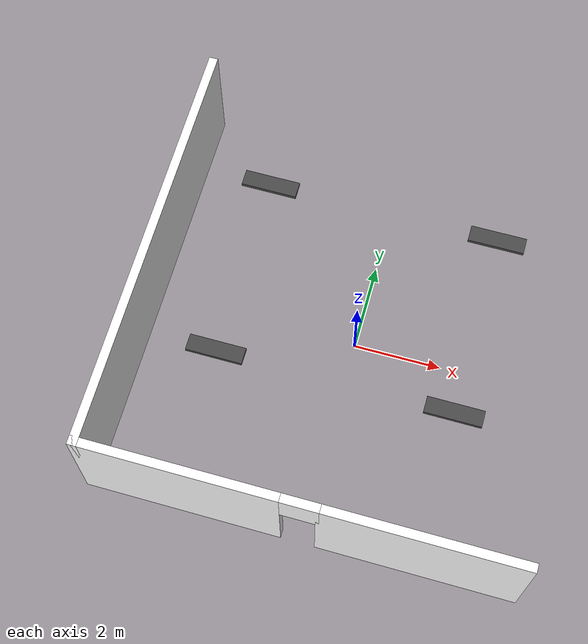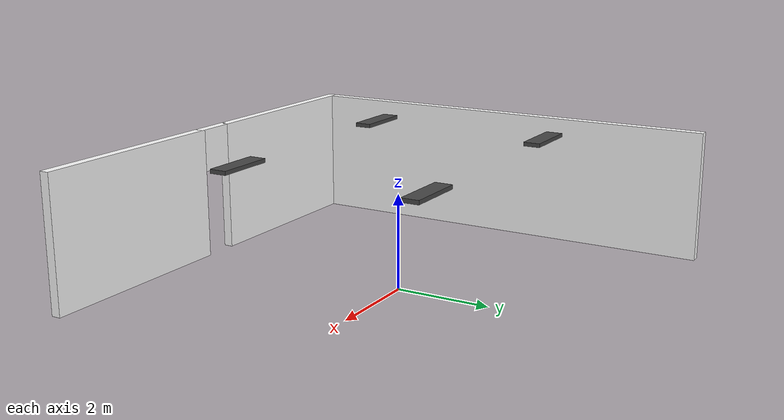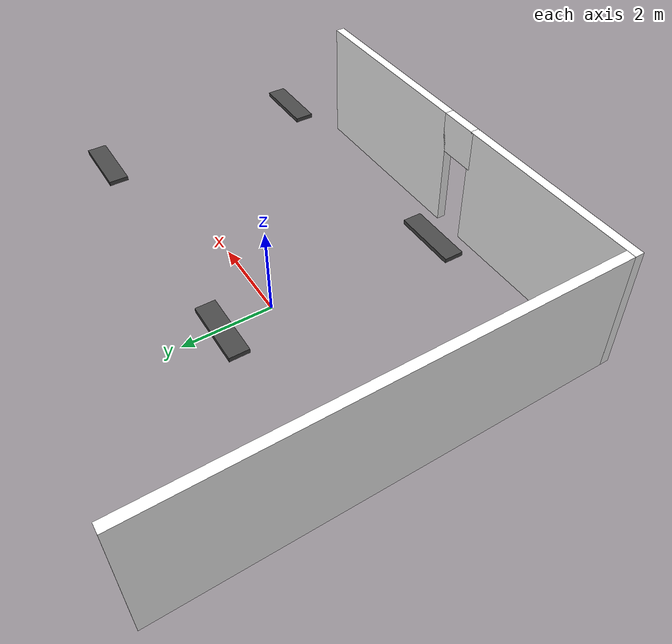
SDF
<sdf version="1.12">
 <world name="small_factory_room">
  <model name="south_wall">
   <static>true</static>
   <link name="south_wall_left_link">
    <pose>-2.5625 -4.6500000000000004 1.5 0 0 0</pose>
    <collision name="south_wall_left_collision">
     <geometry><box><size>4.375 0.20000000000000001 2.7999999999999998</size></box></geometry>
    </collision>
    <visual name="south_wall_left_visual">
     <geometry>
      <mesh>
       <uri>file:///home/nearteh/Documents/Gazebo World/my_world/models/Walls/meshes/south_wall_left.obj</uri>
      </mesh>
     </geometry>
     <material>
      <ambient>1 1 1 1</ambient>
      <diffuse>1 1 1 1</diffuse>
      <specular>0.150000006 0.150000006 0.150000006 1</specular>
      <pbr>
       <metal>
        <albedo_map>file:///home/nearteh/Documents/Gazebo World/my_world/models/Walls/textures/plastered_wall_02_1k/textures/plastered_wall_02_diff_1k.jpg</albedo_map>
        <roughness_map>file:///home/nearteh/Documents/Gazebo World/my_world/models/Walls/textures/plastered_wall_02_1k/textures/plastered_wall_02_rough_1k.exr</roughness_map>
        <metalness>0.0</metalness>
        <ambient_occlusion_map>file:///home/nearteh/Documents/Gazebo World/my_world/models/Walls/textures/plastered_wall_02_1k/textures/plastered_wall_02_ao_1k.jpg</ambient_occlusion_map>
        <normal_map type="tangent">file:///home/nearteh/Documents/Gazebo World/my_world/models/Walls/textures/plastered_wall_02_1k/textures/plastered_wall_02_nor_gl_1k.exr</normal_map>
       </metal>
      </pbr>
     </material>
    </visual>
    <inertial>
     <mass>1</mass>
     <inertia><ixx>1</ixx><ixy>0</ixy><ixz>0</ixz><iyy>1</iyy><iyz>0</iyz><izz>1</izz></inertia>
    </inertial>
   </link>
   <link name="south_wall_right_link">
    <pose>2.5625 -4.6500000000000004 1.5 0 0 0</pose>
    <collision name="south_wall_right_collision">
     <geometry><box><size>4.375 0.20000000000000001 2.7999999999999998</size></box></geometry>
    </collision>
    <visual name="south_wall_right_visual">
     <geometry>
      <mesh>
       <uri>file:///home/nearteh/Documents/Gazebo World/my_world/models/Walls/meshes/south_wall_right.obj</uri>
      </mesh>
     </geometry>
     <material>
      <ambient>1 1 1 1</ambient>
      <diffuse>1 1 1 1</diffuse>
      <specular>0.150000006 0.150000006 0.150000006 1</specular>
      <pbr>
       <metal>
        <albedo_map>file:///home/nearteh/Documents/Gazebo World/my_world/models/Walls/textures/plastered_wall_02_1k/textures/plastered_wall_02_diff_1k.jpg</albedo_map>
        <roughness_map>file:///home/nearteh/Documents/Gazebo World/my_world/models/Walls/textures/plastered_wall_02_1k/textures/plastered_wall_02_rough_1k.exr</roughness_map>
        <metalness>0.0</metalness>
        <ambient_occlusion_map>file:///home/nearteh/Documents/Gazebo World/my_world/models/Walls/textures/plastered_wall_02_1k/textures/plastered_wall_02_ao_1k.jpg</ambient_occlusion_map>
        <normal_map type="tangent">file:///home/nearteh/Documents/Gazebo World/my_world/models/Walls/textures/plastered_wall_02_1k/textures/plastered_wall_02_nor_gl_1k.exr</normal_map>
       </metal>
      </pbr>
     </material>
    </visual>
    <inertial>
     <mass>1</mass>
     <inertia><ixx>1</ixx><ixy>0</ixy><ixz>0</ixz><iyy>1</iyy><iyz>0</iyz><izz>1</izz></inertia>
    </inertial>
   </link>
   <link name="south_wall_overdoor_link">
    <pose>0 -4.6500000000000004 2.4422750000000004 0 0 0</pose>
    <collision name="south_wall_overdoor_collision">
     <geometry><box><size>0.90000000000000002 0.20000000000000001 0.91544999999999999</size></box></geometry>
    </collision>
    <visual name="south_wall_overdoor_visual">
     <geometry>
      <mesh>
       <uri>file:///home/nearteh/Documents/Gazebo World/my_world/models/Walls/meshes/south_wall_overdoor.obj</uri>
      </mesh>
     </geometry>
     <material>
      <ambient>1 1 1 1</ambient>
      <diffuse>1 1 1 1</diffuse>
      <specular>0.150000006 0.150000006 0.150000006 1</specular>
      <pbr>
       <metal>
        <albedo_map>file:///home/nearteh/Documents/Gazebo World/my_world/models/Walls/textures/plastered_wall_02_1k/textures/plastered_wall_02_diff_1k.jpg</albedo_map>
        <roughness_map>file:///home/nearteh/Documents/Gazebo World/my_world/models/Walls/textures/plastered_wall_02_1k/textures/plastered_wall_02_rough_1k.exr</roughness_map>
        <metalness>0.0</metalness>
        <ambient_occlusion_map>file:///home/nearteh/Documents/Gazebo World/my_world/models/Walls/textures/plastered_wall_02_1k/textures/plastered_wall_02_ao_1k.jpg</ambient_occlusion_map>
        <normal_map type="tangent">file:///home/nearteh/Documents/Gazebo World/my_world/models/Walls/textures/plastered_wall_02_1k/textures/plastered_wall_02_nor_gl_1k.exr</normal_map>
       </metal>
      </pbr>
     </material>
    </visual>
    <inertial>
     <mass>1</mass>
     <inertia><ixx>1</ixx><ixy>0</ixy><ixz>0</ixz><iyy>1</iyy><iyz>0</iyz><izz>1</izz></inertia>
    </inertial>
   </link>
  </model>
  <model name="west_wall">
   <static>true</static>
   <link name="west_wall_link">
    <pose>-4.6500000000000004 0 1.5 0 0 1.5708</pose>
    <collision name="west_wall_collision">
     <geometry><box><size>9.5 0.20000000000000001 2.7999999999999998</size></box></geometry>
    </collision>
    <visual name="west_wall_visual">
     <geometry><box><size>9.5 0.20000000000000001 2.7999999999999998</size></box></geometry>
     <material>
      <ambient>1 1 1 1</ambient>
      <diffuse>1 1 1 1</diffuse>
      <specular>0.150000006 0.150000006 0.150000006 1</specular>
      <pbr>
       <metal>
        <albedo_map>file:///home/nearteh/Documents/Gazebo World/my_world/models/Walls/textures/plastered_wall_02_1k/textures/plastered_wall_02_diff_1k.jpg</albedo_map>
        <roughness_map>file:///home/nearteh/Documents/Gazebo World/my_world/models/Walls/textures/plastered_wall_02_1k/textures/plastered_wall_02_rough_1k.exr</roughness_map>
        <metalness>0.0</metalness>
        <ambient_occlusion_map>file:///home/nearteh/Documents/Gazebo World/my_world/models/Walls/textures/plastered_wall_02_1k/textures/plastered_wall_02_ao_1k.jpg</ambient_occlusion_map>
        <normal_map type="tangent">file:///home/nearteh/Documents/Gazebo World/my_world/models/Walls/textures/plastered_wall_02_1k/textures/plastered_wall_02_nor_gl_1k.exr</normal_map>
       </metal>
      </pbr>
     </material>
    </visual>
    <inertial>
     <mass>1</mass>
     <inertia><ixx>1</ixx><ixy>0</ixy><ixz>0</ixz><iyy>1</iyy><iyz>0</iyz><izz>1</izz></inertia>
    </inertial>
   </link>
   <pose>0 4.9177328875771276e-14 -8.8817841970012523e-16 0 0 1.0769163338864018e-14</pose>
  </model>
  <model name="lamp_fixture_01">
   <static>true</static>
   <link name="lamp_fixture_01_link">
    <pose>-2.5 -2 2.8599999999999999 0 0 0</pose>
    <visual name="lamp_fixture_01_housing">
     <cast_shadows>false</cast_shadows>
     <geometry><box><size>1.2 0.34999999999999998 0.080000000000000002</size></box></geometry>
     <material>
      <ambient>0.180000007 0.180000007 0.180000007 1</ambient>
      <diffuse>0.280000001 0.280000001 0.280000001 1</diffuse>
      <specular>0.0799999982 0.0799999982 0.0799999982 1</specular>
     </material>
    </visual>
    <visual name="lamp_fixture_01_diffuser">
     <cast_shadows>false</cast_shadows>
     <pose>0 0 -0.040000000000000001 0 0 0</pose>
     <geometry><box><size>1.0800000000000001 0.23999999999999999 0.029999999999999999</size></box></geometry>
     <material>
      <ambient>0.920000017 0.920000017 0.860000014 1</ambient>
      <diffuse>0.980000019 0.980000019 0.899999976 1</diffuse>
      <specular>0.140000001 0.140000001 0.140000001 1</specular>
      <emissive>0.150000006 0.150000006 0.119999997 1</emissive>
     </material>
    </visual>
    <inertial>
     <mass>1</mass>
     <inertia><ixx>1</ixx><ixy>0</ixy><ixz>0</ixz><iyy>1</iyy><iyz>0</iyz><izz>1</izz></inertia>
    </inertial>
   </link>
  </model>
  <model name="lamp_fixture_02">
   <static>true</static>
   <link name="lamp_fixture_02_link">
    <pose>2.5 -2 2.8599999999999999 0 0 0</pose>
    <visual name="lamp_fixture_02_housing">
     <cast_shadows>false</cast_shadows>
     <geometry><box><size>1.2 0.34999999999999998 0.080000000000000002</size></box></geometry>
     <material>
      <ambient>0.180000007 0.180000007 0.180000007 1</ambient>
      <diffuse>0.280000001 0.280000001 0.280000001 1</diffuse>
      <specular>0.0799999982 0.0799999982 0.0799999982 1</specular>
     </material>
    </visual>
    <visual name="lamp_fixture_02_diffuser">
     <cast_shadows>false</cast_shadows>
     <pose>0 0 -0.040000000000000001 0 0 0</pose>
     <geometry><box><size>1.0800000000000001 0.23999999999999999 0.029999999999999999</size></box></geometry>
     <material>
      <ambient>0.920000017 0.920000017 0.860000014 1</ambient>
      <diffuse>0.980000019 0.980000019 0.899999976 1</diffuse>
      <specular>0.140000001 0.140000001 0.140000001 1</specular>
      <emissive>0.150000006 0.150000006 0.119999997 1</emissive>
     </material>
    </visual>
    <inertial>
     <mass>1</mass>
     <inertia><ixx>1</ixx><ixy>0</ixy><ixz>0</ixz><iyy>1</iyy><iyz>0</iyz><izz>1</izz></inertia>
    </inertial>
   </link>
  </model>
  <model name="lamp_fixture_03">
   <static>true</static>
   <link name="lamp_fixture_03_link">
    <pose>-2.5 2 2.8599999999999999 0 0 0</pose>
    <visual name="lamp_fixture_03_housing">
     <cast_shadows>false</cast_shadows>
     <geometry><box><size>1.2 0.34999999999999998 0.080000000000000002</size></box></geometry>
     <material>
      <ambient>0.180000007 0.180000007 0.180000007 1</ambient>
      <diffuse>0.280000001 0.280000001 0.280000001 1</diffuse>
      <specular>0.0799999982 0.0799999982 0.0799999982 1</specular>
     </material>
    </visual>
    <visual name="lamp_fixture_03_diffuser">
     <cast_shadows>false</cast_shadows>
     <pose>0 0 -0.040000000000000001 0 0 0</pose>
     <geometry><box><size>1.0800000000000001 0.23999999999999999 0.029999999999999999</size></box></geometry>
     <material>
      <ambient>0.920000017 0.920000017 0.860000014 1</ambient>
      <diffuse>0.980000019 0.980000019 0.899999976 1</diffuse>
      <specular>0.140000001 0.140000001 0.140000001 1</specular>
      <emissive>0.150000006 0.150000006 0.119999997 1</emissive>
     </material>
    </visual>
    <inertial>
     <mass>1</mass>
     <inertia><ixx>1</ixx><ixy>0</ixy><ixz>0</ixz><iyy>1</iyy><iyz>0</iyz><izz>1</izz></inertia>
    </inertial>
   </link>
  </model>
  <model name="lamp_fixture_04">
   <static>true</static>
   <link name="lamp_fixture_04_link">
    <pose>2.5 2 2.8599999999999999 0 0 0</pose>
    <visual name="lamp_fixture_04_housing">
     <cast_shadows>false</cast_shadows>
     <geometry><box><size>1.2 0.34999999999999998 0.080000000000000002</size></box></geometry>
     <material>
      <ambient>0.180000007 0.180000007 0.180000007 1</ambient>
      <diffuse>0.280000001 0.280000001 0.280000001 1</diffuse>
      <specular>0.0799999982 0.0799999982 0.0799999982 1</specular>
     </material>
    </visual>
    <visual name="lamp_fixture_04_diffuser">
     <cast_shadows>false</cast_shadows>
     <pose>0 0 -0.040000000000000001 0 0 0</pose>
     <geometry><box><size>1.0800000000000001 0.23999999999999999 0.029999999999999999</size></box></geometry>
     <material>
      <ambient>0.920000017 0.920000017 0.860000014 1</ambient>
      <diffuse>0.980000019 0.980000019 0.899999976 1</diffuse>
      <specular>0.140000001 0.140000001 0.140000001 1</specular>
      <emissive>0.150000006 0.150000006 0.119999997 1</emissive>
     </material>
    </visual>
    <inertial>
     <mass>1</mass>
     <inertia><ixx>1</ixx><ixy>0</ixy><ixz>0</ixz><iyy>1</iyy><iyz>0</iyz><izz>1</izz></inertia>
    </inertial>
   </link>
  </model>
 </world>
</sdf>
